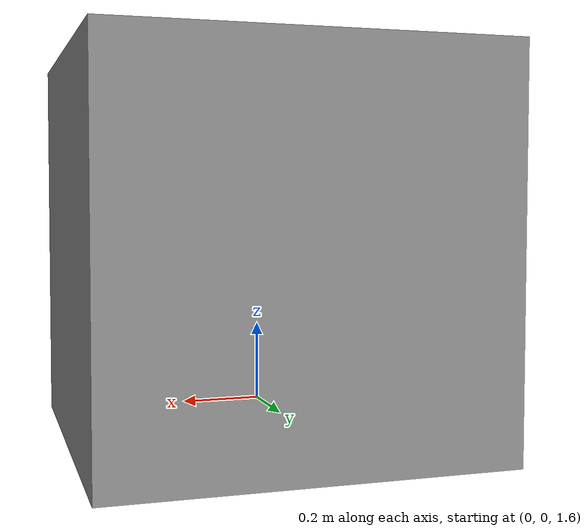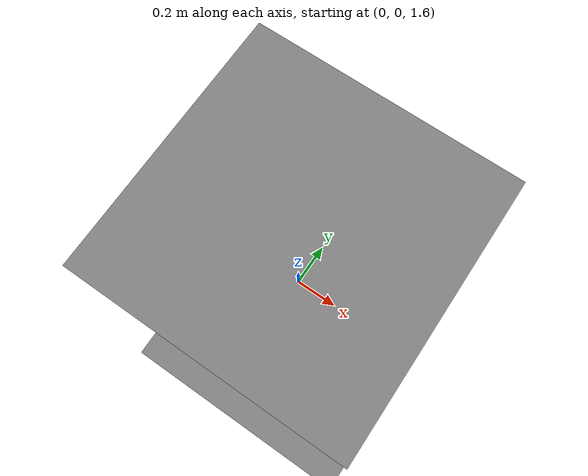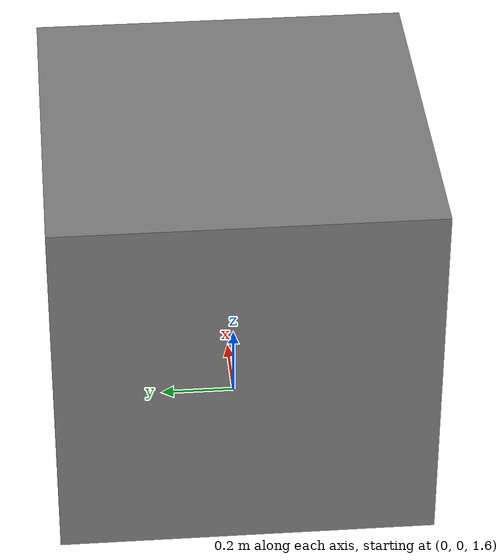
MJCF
<mujoco model="mesh_plane_separated">
            <option gravity="0 0 0" timestep="0.001"/>
            <asset>
                <mesh name="box1"
                    vertex="-.5 -.5 -.5  .5 -.5 -.5  .5 .5 -.5  -.5 .5 -.5
                            -.5 -.5 .5   .5 -.5 .5   .5 .5 .5   -.5 .5 .5"
                    face="0 2 1  0 3 2  4 5 6  4 6 7  0 1 5  0 5 4
                          2 3 7  2 7 6  0 4 7  0 7 3  1 2 6  1 6 5"/>
            </asset>
            <worldbody>
                <geom name="floor" type="plane" size="10 10 0.1"/>
                <body name="mesh_box" pos="0 0 2.0">
                    <joint type="free"/>
                    <geom type="mesh" mesh="box1"/>
                </body>
            </worldbody>
        </mujoco>
